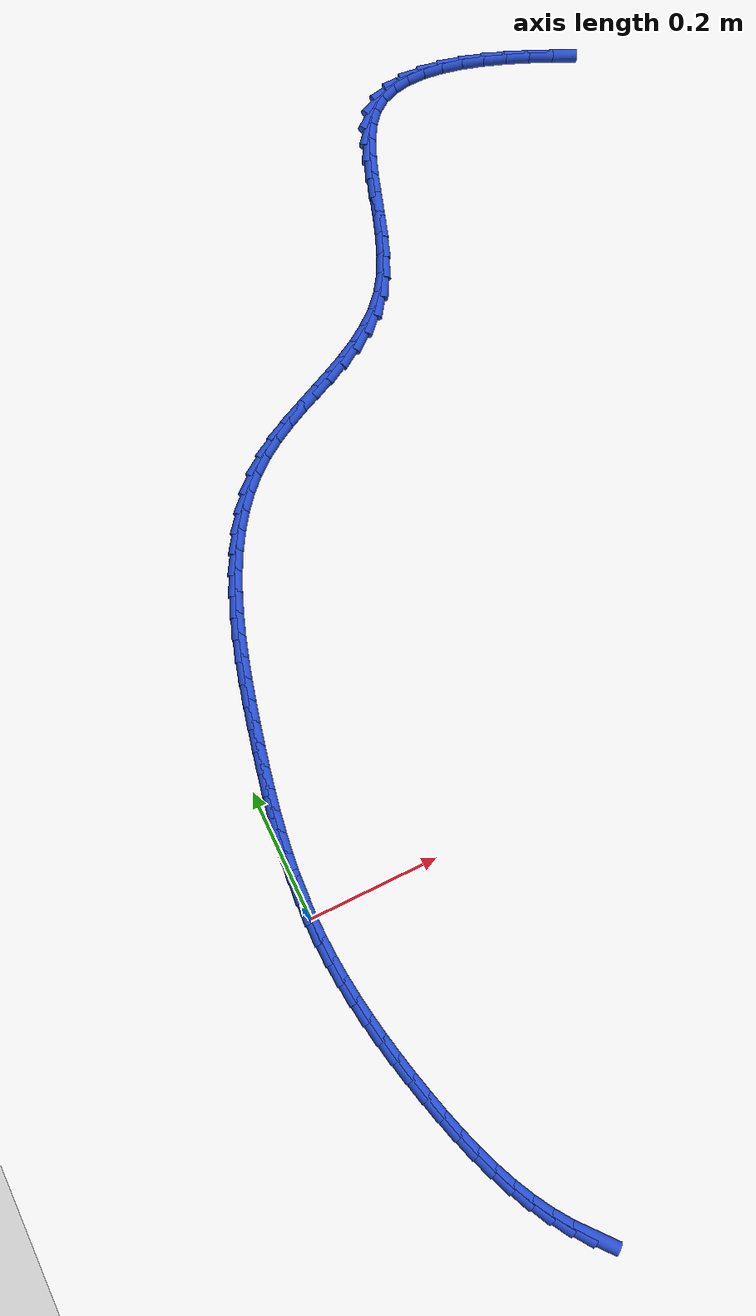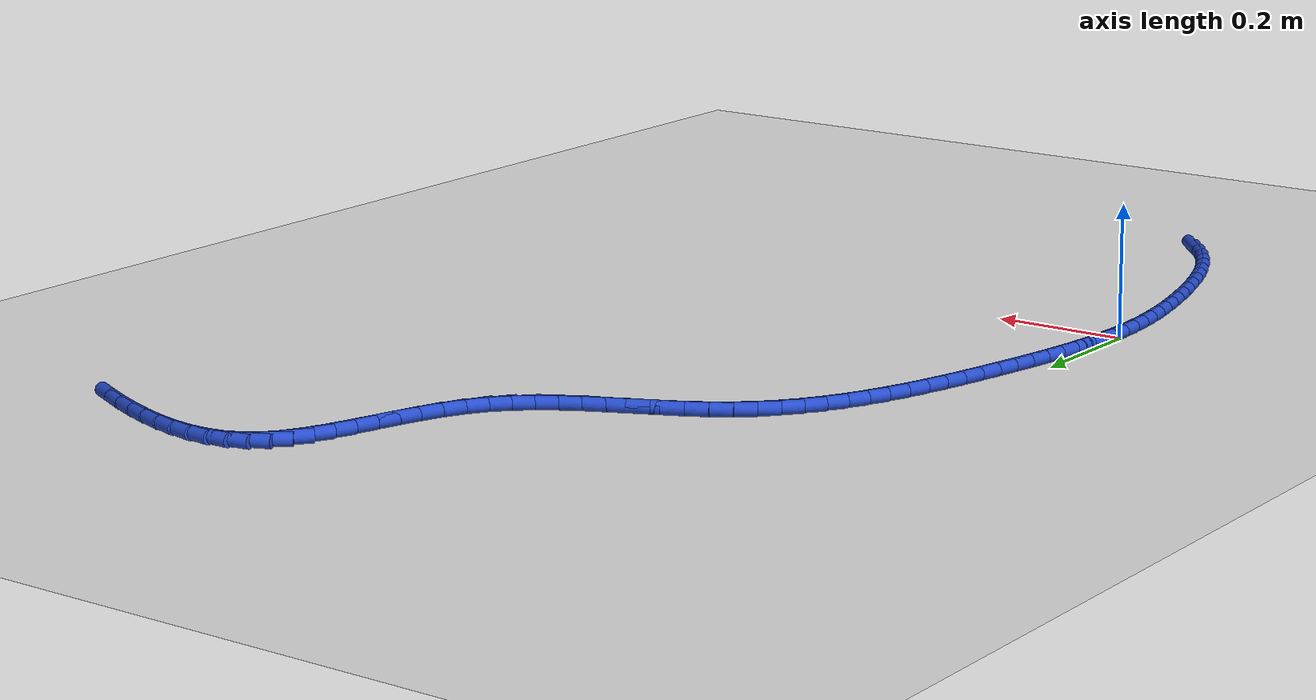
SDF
<sdf version="1.6">
 <world name="default">
  <model name="ground_plane">
   <static>1</static>
   <link name="link">
    <collision name="collision">
     <geometry><plane><normal>0 0 1</normal><size>100 100</size></plane></geometry>
     <surface><friction><ode><mu>100</mu><mu2>50</mu2></ode></friction></surface>
    </collision>
    <visual name="visual">
     <cast_shadows>0</cast_shadows>
     <geometry><plane><normal>0 0 1</normal><size>100 100</size></plane></geometry>
     <material>
      <script><uri>file://media/materials/scripts/gazebo.material</uri><name>Gazebo/WhiteGlow</name></script>
     </material>
    </visual>
   </link>
  </model>
  <model name="line">
   <link name="link_0">
    <pose>-7.806255641895632e-18 -1.3877787807814457e-17 0.01 0 1.57 1.543758668066532</pose>
    <collision name="collision">
     <geometry><cylinder><radius>0.01</radius><length>0.08</length></cylinder></geometry>
    </collision>
    <visual name="visual">
     <material>
      <script><name>Gazebo/Blue</name><uri>file://media/materials/scripts/gazebo.material</uri></script>
     </material>
     <geometry><cylinder><radius>0.01</radius><length>0.08</length></cylinder></geometry>
    </visual>
   </link>
   <link name="link_1">
    <pose>0.0008558965189084472 0.0316480045075554 0.01 0 1.57 1.505740795909924</pose>
    <collision name="collision">
     <geometry><cylinder><radius>0.01</radius><length>0.08</length></cylinder></geometry>
    </collision>
    <visual name="visual">
     <material>
      <script><name>Gazebo/Blue</name><uri>file://media/materials/scripts/gazebo.material</uri></script>
     </material>
     <geometry><cylinder><radius>0.01</radius><length>0.08</length></cylinder></geometry>
    </visual>
   </link>
   <link name="link_2">
    <pose>0.0029159362944309 0.06326918636988166 0.01 0 1.57 1.471400113362632</pose>
    <collision name="collision">
     <geometry><cylinder><radius>0.01</radius><length>0.08</length></cylinder></geometry>
    </collision>
    <visual name="visual">
     <material>
      <script><name>Gazebo/Blue</name><uri>file://media/materials/scripts/gazebo.material</uri></script>
     </material>
     <geometry><cylinder><radius>0.01</radius><length>0.08</length></cylinder></geometry>
    </visual>
   </link>
   <link name="link_3">
    <pose>0.00607141226410911 0.09491101043141258 0.01 0 1.57 1.4409038023674445</pose>
    <collision name="collision">
     <geometry><cylinder><radius>0.01</radius><length>0.08</length></cylinder></geometry>
    </collision>
    <visual name="visual">
     <material>
      <script><name>Gazebo/Blue</name><uri>file://media/materials/scripts/gazebo.material</uri></script>
     </material>
     <geometry><cylinder><radius>0.01</radius><length>0.08</length></cylinder></geometry>
    </visual>
   </link>
   <link name="link_4">
    <pose>0.010213617365484838 0.12662094153658193 0.01 0 1.57 1.414343208902342</pose>
    <collision name="collision">
     <geometry><cylinder><radius>0.01</radius><length>0.08</length></cylinder></geometry>
    </collision>
    <visual name="visual">
     <material>
      <script><name>Gazebo/Blue</name><uri>file://media/materials/scripts/gazebo.material</uri></script>
     </material>
     <geometry><cylinder><radius>0.01</radius><length>0.08</length></cylinder></geometry>
    </visual>
   </link>
   <link name="link_5">
    <pose>0.015233844536099848 0.15844644452982354 0.01 0 1.57 1.3917465496848271</pose>
    <collision name="collision">
     <geometry><cylinder><radius>0.01</radius><length>0.08</length></cylinder></geometry>
    </collision>
    <visual name="visual">
     <material>
      <script><name>Gazebo/Blue</name><uri>file://media/materials/scripts/gazebo.material</uri></script>
     </material>
     <geometry><cylinder><radius>0.01</radius><length>0.08</length></cylinder></geometry>
    </visual>
   </link>
   <link name="link_6">
    <pose>0.02102338671349588 0.19043498425557104 0.01 0 1.57 1.3730919539369864</pose>
    <collision name="collision">
     <geometry><cylinder><radius>0.01</radius><length>0.08</length></cylinder></geometry>
    </collision>
    <visual name="visual">
     <material>
      <script><name>Gazebo/Blue</name><uri>file://media/materials/scripts/gazebo.material</uri></script>
     </material>
     <geometry><cylinder><radius>0.01</radius><length>0.08</length></cylinder></geometry>
    </visual>
   </link>
   <link name="link_7">
    <pose>0.02747353683521471 0.22263402555825837 0.01 0 1.57 1.3583195594884623</pose>
    <collision name="collision">
     <geometry><cylinder><radius>0.01</radius><length>0.08</length></cylinder></geometry>
    </collision>
    <visual name="visual">
     <material>
      <script><name>Gazebo/Blue</name><uri>file://media/materials/scripts/gazebo.material</uri></script>
     </material>
     <geometry><cylinder><radius>0.01</radius><length>0.08</length></cylinder></geometry>
    </visual>
   </link>
   <link name="link_8">
    <pose>0.034475587838798116 0.25509103328231936 0.01 0 1.57 1.3473319732001865</pose>
    <collision name="collision">
     <geometry><cylinder><radius>0.01</radius><length>0.08</length></cylinder></geometry>
    </collision>
    <visual name="visual">
     <material>
      <script><name>Gazebo/Blue</name><uri>file://media/materials/scripts/gazebo.material</uri></script>
     </material>
     <geometry><cylinder><radius>0.01</radius><length>0.08</length></cylinder></geometry>
    </visual>
   </link>
   <link name="link_9">
    <pose>0.04192111137246802 0.2878531935465328 0.01 0 1.57 1.3375063963695724</pose>
    <collision name="collision">
     <geometry><cylinder><radius>0.01</radius><length>0.08</length></cylinder></geometry>
    </collision>
    <visual name="visual">
     <material>
      <script><name>Gazebo/Blue</name><uri>file://media/materials/scripts/gazebo.material</uri></script>
     </material>
     <geometry><cylinder><radius>0.01</radius><length>0.08</length></cylinder></geometry>
    </visual>
   </link>
   <link name="link_10">
    <pose>0.04977276539147243 0.3208966023432861 0.01 0 1.57 1.3229385455392462</pose>
    <collision name="collision">
     <geometry><cylinder><radius>0.01</radius><length>0.08</length></cylinder></geometry>
    </collision>
    <visual name="visual">
     <material>
      <script><name>Gazebo/Blue</name><uri>file://media/materials/scripts/gazebo.material</uri></script>
     </material>
     <geometry><cylinder><radius>0.01</radius><length>0.08</length></cylinder></geometry>
    </visual>
   </link>
   <link name="link_11">
    <pose>0.058158153008186754 0.35403240164557254 0.01 0 1.57 1.3026931092101863</pose>
    <collision name="collision">
     <geometry><cylinder><radius>0.01</radius><length>0.08</length></cylinder></geometry>
    </collision>
    <visual name="visual">
     <material>
      <script><name>Gazebo/Blue</name><uri>file://media/materials/scripts/gazebo.material</uri></script>
     </material>
     <geometry><cylinder><radius>0.01</radius><length>0.08</length></cylinder></geometry>
    </visual>
   </link>
   <link name="link_12">
    <pose>0.06722821271247166 0.3870483967951238 0.01 0 1.57 1.276521718573467</pose>
    <collision name="collision">
     <geometry><cylinder><radius>0.01</radius><length>0.08</length></cylinder></geometry>
    </collision>
    <visual name="visual">
     <material>
      <script><name>Gazebo/Blue</name><uri>file://media/materials/scripts/gazebo.material</uri></script>
     </material>
     <geometry><cylinder><radius>0.01</radius><length>0.08</length></cylinder></geometry>
    </visual>
   </link>
   <link name="link_13">
    <pose>0.07713388299418776 0.41973239313367117 0.01 0 1.57 1.2440430461393286</pose>
    <collision name="collision">
     <geometry><cylinder><radius>0.01</radius><length>0.08</length></cylinder></geometry>
    </collision>
    <visual name="visual">
     <material>
      <script><name>Gazebo/Blue</name><uri>file://media/materials/scripts/gazebo.material</uri></script>
     </material>
     <geometry><cylinder><radius>0.01</radius><length>0.08</length></cylinder></geometry>
    </visual>
   </link>
   <link name="link_14">
    <pose>0.08802610234319569 0.4518721960029466 0.01 0 1.57 1.2047565377561085</pose>
    <collision name="collision">
     <geometry><cylinder><radius>0.01</radius><length>0.08</length></cylinder></geometry>
    </collision>
    <visual name="visual">
     <material>
      <script><name>Gazebo/Blue</name><uri>file://media/materials/scripts/gazebo.material</uri></script>
     </material>
     <geometry><cylinder><radius>0.01</radius><length>0.08</length></cylinder></geometry>
    </visual>
   </link>
   <link name="link_15">
    <pose>0.1000558092493561 0.4832556107446815 0.01 0 1.57 1.1580645969727832</pose>
    <collision name="collision">
     <geometry><cylinder><radius>0.01</radius><length>0.08</length></cylinder></geometry>
    </collision>
    <visual name="visual">
     <material>
      <script><name>Gazebo/Blue</name><uri>file://media/materials/scripts/gazebo.material</uri></script>
     </material>
     <geometry><cylinder><radius>0.01</radius><length>0.08</length></cylinder></geometry>
    </visual>
   </link>
   <link name="link_16">
    <pose>0.11337394220252965 0.5136704427006076 0.01 0 1.57 1.1033120941979375</pose>
    <collision name="collision">
     <geometry><cylinder><radius>0.01</radius><length>0.08</length></cylinder></geometry>
    </collision>
    <visual name="visual">
     <material>
      <script><name>Gazebo/Blue</name><uri>file://media/materials/scripts/gazebo.material</uri></script>
     </material>
     <geometry><cylinder><radius>0.01</radius><length>0.08</length></cylinder></geometry>
    </visual>
   </link>
   <link name="link_17">
    <pose>0.12813143969257695 0.5429044972124563 0.01 0 1.57 1.039854661652886</pose>
    <collision name="collision">
     <geometry><cylinder><radius>0.01</radius><length>0.08</length></cylinder></geometry>
    </collision>
    <visual name="visual">
     <material>
      <script><name>Gazebo/Blue</name><uri>file://media/materials/scripts/gazebo.material</uri></script>
     </material>
     <geometry><cylinder><radius>0.01</radius><length>0.08</length></cylinder></geometry>
    </visual>
   </link>
   <link name="link_18">
    <pose>0.1444792402093586 0.5707455796219593 0.01 0 1.57 0.9671682220580119</pose>
    <collision name="collision">
     <geometry><cylinder><radius>0.01</radius><length>0.08</length></cylinder></geometry>
    </collision>
    <visual name="visual">
     <material>
      <script><name>Gazebo/Blue</name><uri>file://media/materials/scripts/gazebo.material</uri></script>
     </material>
     <geometry><cylinder><radius>0.01</radius><length>0.08</length></cylinder></geometry>
    </visual>
   </link>
   <link name="link_19">
    <pose>0.16256828224273534 0.5969814952708483 0.01 0 1.57 0.8850078232531806</pose>
    <collision name="collision">
     <geometry><cylinder><radius>0.01</radius><length>0.08</length></cylinder></geometry>
    </collision>
    <visual name="visual">
     <material>
      <script><name>Gazebo/Blue</name><uri>file://media/materials/scripts/gazebo.material</uri></script>
     </material>
     <geometry><cylinder><radius>0.01</radius><length>0.08</length></cylinder></geometry>
    </visual>
   </link>
   <link name="link_20">
    <pose>0.18254950428256778 0.6214000495008549 0.01 0 1.57 0.7936085216722211</pose>
    <collision name="collision">
     <geometry><cylinder><radius>0.01</radius><length>0.08</length></cylinder></geometry>
    </collision>
    <visual name="visual">
     <material>
      <script><name>Gazebo/Blue</name><uri>file://media/materials/scripts/gazebo.material</uri></script>
     </material>
     <geometry><cylinder><radius>0.01</radius><length>0.08</length></cylinder></geometry>
    </visual>
   </link>
   <link name="link_21">
    <pose>0.20457384481871638 0.6437890476537105 0.01 0 1.57 0.6938908633965613</pose>
    <collision name="collision">
     <geometry><cylinder><radius>0.01</radius><length>0.08</length></cylinder></geometry>
    </collision>
    <visual name="visual">
     <material>
      <script><name>Gazebo/Blue</name><uri>file://media/materials/scripts/gazebo.material</uri></script>
     </material>
     <geometry><cylinder><radius>0.01</radius><length>0.08</length></cylinder></geometry>
    </visual>
   </link>
   <link name="link_22">
    <pose>0.22879224234104195 0.6639362950711466 0.01 0 1.57 0.5924047732687826</pose>
    <collision name="collision">
     <geometry><cylinder><radius>0.01</radius><length>0.08</length></cylinder></geometry>
    </collision>
    <visual name="visual">
     <material>
      <script><name>Gazebo/Blue</name><uri>file://media/materials/scripts/gazebo.material</uri></script>
     </material>
     <geometry><cylinder><radius>0.01</radius><length>0.08</length></cylinder></geometry>
    </visual>
   </link>
   <link name="link_23">
    <pose>0.2552536741422328 0.6817460059893444 0.01 0 1.57 0.5133283043003264</pose>
    <collision name="collision">
     <geometry><cylinder><radius>0.01</radius><length>0.08</length></cylinder></geometry>
    </collision>
    <visual name="visual">
     <material>
      <script><name>Gazebo/Blue</name><uri>file://media/materials/scripts/gazebo.material</uri></script>
     </material>
     <geometry><cylinder><radius>0.01</radius><length>0.08</length></cylinder></geometry>
    </visual>
   </link>
   <link name="link_24">
    <pose>0.283518691610286 0.697680029520909 0.01 0 1.57 0.46216572186184385</pose>
    <collision name="collision">
     <geometry><cylinder><radius>0.01</radius><length>0.08</length></cylinder></geometry>
    </collision>
    <visual name="visual">
     <material>
      <script><name>Gazebo/Blue</name><uri>file://media/materials/scripts/gazebo.material</uri></script>
     </material>
     <geometry><cylinder><radius>0.01</radius><length>0.08</length></cylinder></geometry>
    </visual>
   </link>
   <link name="link_25">
    <pose>0.3130017661820029 0.7123669939659347 0.01 0 1.57 0.4370259539608368</pose>
    <collision name="collision">
     <geometry><cylinder><radius>0.01</radius><length>0.08</length></cylinder></geometry>
    </collision>
    <visual name="visual">
     <material>
      <script><name>Gazebo/Blue</name><uri>file://media/materials/scripts/gazebo.material</uri></script>
     </material>
     <geometry><cylinder><radius>0.01</radius><length>0.08</length></cylinder></geometry>
    </visual>
   </link>
   <link name="link_26">
    <pose>0.343117342812616 0.7264355578584716 0.01 0 1.57 0.4367082186893146</pose>
    <collision name="collision">
     <geometry><cylinder><radius>0.01</radius><length>0.08</length></cylinder></geometry>
    </collision>
    <visual name="visual">
     <material>
      <script><name>Gazebo/Blue</name><uri>file://media/materials/scripts/gazebo.material</uri></script>
     </material>
     <geometry><cylinder><radius>0.01</radius><length>0.08</length></cylinder></geometry>
    </visual>
   </link>
   <link name="link_27">
    <pose>0.37327986645735733 0.7405143797325687 0.01 0 1.57 0.46109995841185386</pose>
    <collision name="collision">
     <geometry><cylinder><radius>0.01</radius><length>0.08</length></cylinder></geometry>
    </collision>
    <visual name="visual">
     <material>
      <script><name>Gazebo/Blue</name><uri>file://media/materials/scripts/gazebo.material</uri></script>
     </material>
     <geometry><cylinder><radius>0.01</radius><length>0.08</length></cylinder></geometry>
    </visual>
   </link>
   <link name="link_28">
    <pose>0.4029037820714588 0.7552321181222753 0.01 0 1.57 0.5111679207233936</pose>
    <collision name="collision">
     <geometry><cylinder><radius>0.01</radius><length>0.08</length></cylinder></geometry>
    </collision>
    <visual name="visual">
     <material>
      <script><name>Gazebo/Blue</name><uri>file://media/materials/scripts/gazebo.material</uri></script>
     </material>
     <geometry><cylinder><radius>0.01</radius><length>0.08</length></cylinder></geometry>
    </visual>
   </link>
   <link name="link_29">
    <pose>0.431403534610153 0.7712174315616412 0.01 0 1.57 0.5885586222143333</pose>
    <collision name="collision">
     <geometry><cylinder><radius>0.01</radius><length>0.08</length></cylinder></geometry>
    </collision>
    <visual name="visual">
     <material>
      <script><name>Gazebo/Blue</name><uri>file://media/materials/scripts/gazebo.material</uri></script>
     </material>
     <geometry><cylinder><radius>0.01</radius><length>0.08</length></cylinder></geometry>
    </visual>
   </link>
   <link name="link_30">
    <pose>0.4581935690286717 0.7890989785847154 0.01 0 1.57 0.6945970259362806</pose>
    <collision name="collision">
     <geometry><cylinder><radius>0.01</radius><length>0.08</length></cylinder></geometry>
    </collision>
    <visual name="visual">
     <material>
      <script><name>Gazebo/Blue</name><uri>file://media/materials/scripts/gazebo.material</uri></script>
     </material>
     <geometry><cylinder><radius>0.01</radius><length>0.08</length></cylinder></geometry>
    </visual>
   </link>
   <link name="link_31">
    <pose>0.48268833028224717 0.8095054177255475 0.01 0 1.57 0.8284507504421147</pose>
    <collision name="collision">
     <geometry><cylinder><radius>0.01</radius><length>0.08</length></cylinder></geometry>
    </collision>
    <visual name="visual">
     <material>
      <script><name>Gazebo/Blue</name><uri>file://media/materials/scripts/gazebo.material</uri></script>
     </material>
     <geometry><cylinder><radius>0.01</radius><length>0.08</length></cylinder></geometry>
    </visual>
   </link>
   <link name="link_32">
    <pose>0.5043022633261116 0.8330654075181869 0.01 0 1.57 0.9795465984308942</pose>
    <collision name="collision">
     <geometry><cylinder><radius>0.01</radius><length>0.08</length></cylinder></geometry>
    </collision>
    <visual name="visual">
     <material>
      <script><name>Gazebo/Blue</name><uri>file://media/materials/scripts/gazebo.material</uri></script>
     </material>
     <geometry><cylinder><radius>0.01</radius><length>0.08</length></cylinder></geometry>
    </visual>
   </link>
   <link name="link_33">
    <pose>0.5225648713107278 0.8602675248480662 0.01 0 1.57 1.1044709969895836</pose>
    <collision name="collision">
     <geometry><cylinder><radius>0.01</radius><length>0.08</length></cylinder></geometry>
    </collision>
    <visual name="visual">
     <material>
      <script><name>Gazebo/Blue</name><uri>file://media/materials/scripts/gazebo.material</uri></script>
     </material>
     <geometry><cylinder><radius>0.01</radius><length>0.08</length></cylinder></geometry>
    </visual>
   </link>
   <link name="link_34">
    <pose>0.5378306959653324 0.8905958743502436 0.01 0 1.57 1.190725432326556</pose>
    <collision name="collision">
     <geometry><cylinder><radius>0.01</radius><length>0.08</length></cylinder></geometry>
    </collision>
    <visual name="visual">
     <material>
      <script><name>Gazebo/Blue</name><uri>file://media/materials/scripts/gazebo.material</uri></script>
     </material>
     <geometry><cylinder><radius>0.01</radius><length>0.08</length></cylinder></geometry>
    </visual>
   </link>
   <link name="link_35">
    <pose>0.5508143856995672 0.9230961361097657 0.01 0 1.57 1.2442744921775082</pose>
    <collision name="collision">
     <geometry><cylinder><radius>0.01</radius><length>0.08</length></cylinder></geometry>
    </collision>
    <visual name="visual">
     <material>
      <script><name>Gazebo/Blue</name><uri>file://media/materials/scripts/gazebo.material</uri></script>
     </material>
     <geometry><cylinder><radius>0.01</radius><length>0.08</length></cylinder></geometry>
    </visual>
   </link>
   <link name="link_36">
    <pose>0.5622320901503481 0.9568121624897081 0.01 0 1.57 1.2692398446456856</pose>
    <collision name="collision">
     <geometry><cylinder><radius>0.01</radius><length>0.08</length></cylinder></geometry>
    </collision>
    <visual name="visual">
     <material>
      <script><name>Gazebo/Blue</name><uri>file://media/materials/scripts/gazebo.material</uri></script>
     </material>
     <geometry><cylinder><radius>0.01</radius><length>0.08</length></cylinder></geometry>
    </visual>
   </link>
   <link name="link_37">
    <pose>0.572799958954591 0.9907878058531462 0.01 0 1.57 1.266968375332468</pose>
    <collision name="collision">
     <geometry><cylinder><radius>0.01</radius><length>0.08</length></cylinder></geometry>
    </collision>
    <visual name="visual">
     <material>
      <script><name>Gazebo/Blue</name><uri>file://media/materials/scripts/gazebo.material</uri></script>
     </material>
     <geometry><cylinder><radius>0.01</radius><length>0.08</length></cylinder></geometry>
    </visual>
   </link>
   <link name="link_38">
    <pose>0.5832341417492113 1.0240669185631541 0.01 0 1.57 1.2356040957616927</pose>
    <collision name="collision">
     <geometry><cylinder><radius>0.01</radius><length>0.08</length></cylinder></geometry>
    </collision>
    <visual name="visual">
     <material>
      <script><name>Gazebo/Blue</name><uri>file://media/materials/scripts/gazebo.material</uri></script>
     </material>
     <geometry><cylinder><radius>0.01</radius><length>0.08</length></cylinder></geometry>
    </visual>
   </link>
   <link name="link_39">
    <pose>0.5942507881711245 1.055693352982808 0.01 0 1.57 1.1694285441774839</pose>
    <collision name="collision">
     <geometry><cylinder><radius>0.01</radius><length>0.08</length></cylinder></geometry>
    </collision>
    <visual name="visual">
     <material>
      <script><name>Gazebo/Blue</name><uri>file://media/materials/scripts/gazebo.material</uri></script>
     </material>
     <geometry><cylinder><radius>0.01</radius><length>0.08</length></cylinder></geometry>
    </visual>
   </link>
   <link name="link_40">
    <pose>0.6065660478572467 1.0847109614751818 0.01 0 1.57 1.0580214836642494</pose>
    <collision name="collision">
     <geometry><cylinder><radius>0.01</radius><length>0.08</length></cylinder></geometry>
    </collision>
    <visual name="visual">
     <material>
      <script><name>Gazebo/Blue</name><uri>file://media/materials/scripts/gazebo.material</uri></script>
     </material>
     <geometry><cylinder><radius>0.01</radius><length>0.08</length></cylinder></geometry>
    </visual>
   </link>
   <link name="link_41">
    <pose>0.6208960704444932 1.1101635964033512 0.01 0 1.57 0.8869254545343136</pose>
    <collision name="collision">
     <geometry><cylinder><radius>0.01</radius><length>0.08</length></cylinder></geometry>
    </collision>
    <visual name="visual">
     <material>
      <script><name>Gazebo/Blue</name><uri>file://media/materials/scripts/gazebo.material</uri></script>
     </material>
     <geometry><cylinder><radius>0.01</radius><length>0.08</length></cylinder></geometry>
    </visual>
   </link>
   <link name="link_42">
    <pose>0.6379570055697799 1.131095110130391 0.01 0 1.57 0.6479128703624005</pose>
    <collision name="collision">
     <geometry><cylinder><radius>0.01</radius><length>0.08</length></cylinder></geometry>
    </collision>
    <visual name="visual">
     <material>
      <script><name>Gazebo/Blue</name><uri>file://media/materials/scripts/gazebo.material</uri></script>
     </material>
     <geometry><cylinder><radius>0.01</radius><length>0.08</length></cylinder></geometry>
    </visual>
   </link>
   <link name="link_43">
    <pose>0.6584311290847005 1.146592308093387 0.01 0 1.57 0.3923210060359048</pose>
    <collision name="collision">
     <geometry><cylinder><radius>0.01</radius><length>0.08</length></cylinder></geometry>
    </collision>
    <visual name="visual">
     <material>
      <script><name>Gazebo/Blue</name><uri>file://media/materials/scripts/gazebo.material</uri></script>
     </material>
     <geometry><cylinder><radius>0.01</radius><length>0.08</length></cylinder></geometry>
    </visual>
   </link>
   <link name="link_44">
    <pose>0.682396313557764 1.1565083989732312 0.01 0 1.57 0.17759906851085347</pose>
    <collision name="collision">
     <geometry><cylinder><radius>0.01</radius><length>0.08</length></cylinder></geometry>
    </collision>
    <visual name="visual">
     <material>
      <script><name>Gazebo/Blue</name><uri>file://media/materials/scripts/gazebo.material</uri></script>
     </material>
     <geometry><cylinder><radius>0.01</radius><length>0.08</length></cylinder></geometry>
    </visual>
   </link>
   <link name="link_45">
    <pose>0.7094096031333837 1.1613570190243616 0.01 0 1.57 0.010688148107674551</pose>
    <collision name="collision">
     <geometry><cylinder><radius>0.01</radius><length>0.08</length></cylinder></geometry>
    </collision>
    <visual name="visual">
     <material>
      <script><name>Gazebo/Blue</name><uri>file://media/materials/scripts/gazebo.material</uri></script>
     </material>
     <geometry><cylinder><radius>0.01</radius><length>0.08</length></cylinder></geometry>
    </visual>
   </link>
   <link name="link_46">
    <pose>0.7390109992770937 1.1616734151786288 0.01 0 1.57 -0.11548256608917344</pose>
    <collision name="collision">
     <geometry><cylinder><radius>0.01</radius><length>0.08</length></cylinder></geometry>
    </collision>
    <visual name="visual">
     <material>
      <script><name>Gazebo/Blue</name><uri>file://media/materials/scripts/gazebo.material</uri></script>
     </material>
     <geometry><cylinder><radius>0.01</radius><length>0.08</length></cylinder></geometry>
    </visual>
   </link>
   <link name="link_47">
    <pose>0.7707405034544269 1.1579928343678823 0.01 0 1.57 -0.2106833294217414</pose>
    <collision name="collision">
     <geometry><cylinder><radius>0.01</radius><length>0.08</length></cylinder></geometry>
    </collision>
    <visual name="visual">
     <material>
      <script><name>Gazebo/Blue</name><uri>file://media/materials/scripts/gazebo.material</uri></script>
     </material>
     <geometry><cylinder><radius>0.01</radius><length>0.08</length></cylinder></geometry>
    </visual>
   </link>
   <link name="link_48">
    <pose>0.8041381171309175 1.150850523523973 0.01 0 1.57 -0.2831403851998883</pose>
    <collision name="collision">
     <geometry><cylinder><radius>0.01</radius><length>0.08</length></cylinder></geometry>
    </collision>
    <visual name="visual">
     <material>
      <script><name>Gazebo/Blue</name><uri>file://media/materials/scripts/gazebo.material</uri></script>
     </material>
     <geometry><cylinder><radius>0.01</radius><length>0.08</length></cylinder></geometry>
    </visual>
   </link>
   <link name="link_49">
    <pose>0.8387438417720987 1.1407817295787506 0.01 0 1.57 -0.33884496505204237</pose>
    <collision name="collision">
     <geometry><cylinder><radius>0.01</radius><length>0.08</length></cylinder></geometry>
    </collision>
    <visual name="visual">
     <material>
      <script><name>Gazebo/Blue</name><uri>file://media/materials/scripts/gazebo.material</uri></script>
     </material>
     <geometry><cylinder><radius>0.01</radius><length>0.08</length></cylinder></geometry>
    </visual>
   </link>
   <link name="link_50">
    <pose>0.874097678843504 1.1283216994640655 0.01 0 1.57 -0.38193836346112814</pose>
    <collision name="collision">
     <geometry><cylinder><radius>0.01</radius><length>0.08</length></cylinder></geometry>
    </collision>
    <visual name="visual">
     <material>
      <script><name>Gazebo/Blue</name><uri>file://media/materials/scripts/gazebo.material</uri></script>
     </material>
     <geometry><cylinder><radius>0.01</radius><length>0.08</length></cylinder></geometry>
    </visual>
   </link>
   <link name="link_51">
    <pose>0.9097396298106672 1.114005680111768 0.01 0 1.57 -0.41521365847846736</pose>
    <collision name="collision">
     <geometry><cylinder><radius>0.01</radius><length>0.08</length></cylinder></geometry>
    </collision>
    <visual name="visual">
     <material>
      <script><name>Gazebo/Blue</name><uri>file://media/materials/scripts/gazebo.material</uri></script>
     </material>
     <geometry><cylinder><radius>0.01</radius><length>0.08</length></cylinder></geometry>
    </visual>
   </link>
   <link name="link_52">
    <pose>0.9452096961391216 1.0983689184537078 0.01 0 1.57 -0.44049610199473566</pose>
    <collision name="collision">
     <geometry><cylinder><radius>0.01</radius><length>0.08</length></cylinder></geometry>
    </collision>
    <visual name="visual">
     <material>
      <script><name>Gazebo/Blue</name><uri>file://media/materials/scripts/gazebo.material</uri></script>
     </material>
     <geometry><cylinder><radius>0.01</radius><length>0.08</length></cylinder></geometry>
    </visual>
   </link>
   <link name="link_202">
    <pose>0.16651803352055977 -0.5492456580085004 0.01 0 1.57 -0.8649407754309075</pose>
    <collision name="collision">
     <geometry><cylinder><radius>0.01</radius><length>0.08</length></cylinder></geometry>
    </collision>
    <visual name="visual">
     <material>
      <script><name>Gazebo/Blue</name><uri>file://media/materials/scripts/gazebo.material</uri></script>
     </material>
     <geometry><cylinder><radius>0.01</radius><length>0.08</length></cylinder></geometry>
    </visual>
   </link>
   <link name="link_203">
    <pose>0.1462776975232183 -0.5254990910619975 0.01 0 1.57 -0.9515903060078857</pose>
    <collision name="collision">
     <geometry><cylinder><radius>0.01</radius><length>0.08</length></cylinder></geometry>
    </collision>
    <visual name="visual">
     <material>
      <script><name>Gazebo/Blue</name><uri>file://media/materials/scripts/gazebo.material</uri></script>
     </material>
     <geometry><cylinder><radius>0.01</radius><length>0.08</length></cylinder></geometry>
    </visual>
   </link>
   <link name="link_204">
    <pose>0.1280184342187337 -0.4998796433065651 0.01 0 1.57 -1.0282060355677887</pose>
    <collision name="collision">
     <geometry><cylinder><radius>0.01</radius><length>0.08</length></cylinder></geometry>
    </collision>
    <visual name="visual">
     <material>
      <script><name>Gazebo/Blue</name><uri>file://media/materials/scripts/gazebo.material</uri></script>
     </material>
     <geometry><cylinder><radius>0.01</radius><length>0.08</length></cylinder></geometry>
    </visual>
   </link>
   <link name="link_205">
    <pose>0.11158089352505243 -0.4726180568350483 0.01 0 1.57 -1.0948247531385715</pose>
    <collision name="collision">
     <geometry><cylinder><radius>0.01</radius><length>0.08</length></cylinder></geometry>
    </collision>
    <visual name="visual">
     <material>
      <script><name>Gazebo/Blue</name><uri>file://media/materials/scripts/gazebo.material</uri></script>
     </material>
     <geometry><cylinder><radius>0.01</radius><length>0.08</length></cylinder></geometry>
    </visual>
   </link>
   <link name="link_206">
    <pose>0.096802153330011 -0.44394937769128956 0.01 0 1.57 -1.152003597099441</pose>
    <collision name="collision">
     <geometry><cylinder><radius>0.01</radius><length>0.08</length></cylinder></geometry>
    </collision>
    <visual name="visual">
     <material>
      <script><name>Gazebo/Blue</name><uri>file://media/materials/scripts/gazebo.material</uri></script>
     </material>
     <geometry><cylinder><radius>0.01</radius><length>0.08</length></cylinder></geometry>
    </visual>
   </link>
   <link name="link_207">
    <pose>0.08351929152144576 -0.4141086519191302 0.01 0 1.57 -1.2004473193389267</pose>
    <collision name="collision">
     <geometry><cylinder><radius>0.01</radius><length>0.08</length></cylinder></geometry>
    </collision>
    <visual name="visual">
     <material>
      <script><name>Gazebo/Blue</name><uri>file://media/materials/scripts/gazebo.material</uri></script>
     </material>
     <geometry><cylinder><radius>0.01</radius><length>0.08</length></cylinder></geometry>
    </visual>
   </link>
   <link name="link_208">
    <pose>0.07156938598719391 -0.38333092556241455 0.01 0 1.57 -1.2408731536160655</pose>
    <collision name="collision">
     <geometry><cylinder><radius>0.01</radius><length>0.08</length></cylinder></geometry>
    </collision>
    <visual name="visual">
     <material>
      <script><name>Gazebo/Blue</name><uri>file://media/materials/scripts/gazebo.material</uri></script>
     </material>
     <geometry><cylinder><radius>0.01</radius><length>0.08</length></cylinder></geometry>
    </visual>
   </link>
   <link name="link_209">
    <pose>0.0607895146150917 -0.3518512446649839 0.01 0 1.57 -1.2739269971296385</pose>
    <collision name="collision">
     <geometry><cylinder><radius>0.01</radius><length>0.08</length></cylinder></geometry>
    </collision>
    <visual name="visual">
     <material>
      <script><name>Gazebo/Blue</name><uri>file://media/materials/scripts/gazebo.material</uri></script>
     </material>
     <geometry><cylinder><radius>0.01</radius><length>0.08</length></cylinder></geometry>
    </visual>
   </link>
   <link name="link_210">
    <pose>0.05101675529297576 -0.3199046552706808 0.01 0 1.57 -1.3001348157103343</pose>
    <collision name="collision">
     <geometry><cylinder><radius>0.01</radius><length>0.08</length></cylinder></geometry>
    </collision>
    <visual name="visual">
     <material>
      <script><name>Gazebo/Blue</name><uri>file://media/materials/scripts/gazebo.material</uri></script>
     </material>
     <geometry><cylinder><radius>0.01</radius><length>0.08</length></cylinder></geometry>
    </visual>
   </link>
   <link name="link_211">
    <pose>0.042088185908682664 -0.28772620342334776 0.01 0 1.57 -1.3206536775301176</pose>
    <collision name="collision">
     <geometry><cylinder><radius>0.01</radius><length>0.08</length></cylinder></geometry>
    </collision>
    <visual name="visual">
     <material>
      <script><name>Gazebo/Blue</name><uri>file://media/materials/scripts/gazebo.material</uri></script>
     </material>
     <geometry><cylinder><radius>0.01</radius><length>0.08</length></cylinder></geometry>
    </visual>
   </link>
   <link name="link_212">
    <pose>0.03386227601364298 -0.2555300897557072 0.01 0 1.57 -1.3411919222626092</pose>
    <collision name="collision">
     <geometry><cylinder><radius>0.01</radius><length>0.08</length></cylinder></geometry>
    </collision>
    <visual name="visual">
     <material>
      <script><name>Gazebo/Blue</name><uri>file://media/materials/scripts/gazebo.material</uri></script>
     </material>
     <geometry><cylinder><radius>0.01</radius><length>0.08</length></cylinder></geometry>
    </visual>
   </link>
   <link name="link_213">
    <pose>0.026348701254624823 -0.2233831699683269 0.01 0 1.57 -1.364204623049857</pose>
    <collision name="collision">
     <geometry><cylinder><radius>0.01</radius><length>0.08</length></cylinder></geometry>
    </collision>
    <visual name="visual">
     <material>
      <script><name>Gazebo/Blue</name><uri>file://media/materials/scripts/gazebo.material</uri></script>
     </material>
     <geometry><cylinder><radius>0.01</radius><length>0.08</length></cylinder></geometry>
    </visual>
   </link>
   <link name="link_214">
    <pose>0.019622302470902894 -0.19128879861224835 0.01 0 1.57 -1.3897676204863876</pose>
    <collision name="collision">
     <geometry><cylinder><radius>0.01</radius><length>0.08</length></cylinder></geometry>
    </collision>
    <visual name="visual">
     <material>
      <script><name>Gazebo/Blue</name><uri>file://media/materials/scripts/gazebo.material</uri></script>
     </material>
     <geometry><cylinder><radius>0.01</radius><length>0.08</length></cylinder></geometry>
    </visual>
   </link>
   <link name="link_215">
    <pose>0.013758175997302325 -0.15925008126723722 0.01 0 1.57 -1.4179403778259245</pose>
    <collision name="collision">
     <geometry><cylinder><radius>0.01</radius><length>0.08</length></cylinder></geometry>
    </collision>
    <visual name="visual">
     <material>
      <script><name>Gazebo/Blue</name><uri>file://media/materials/scripts/gazebo.material</uri></script>
     </material>
     <geometry><cylinder><radius>0.01</radius><length>0.08</length></cylinder></geometry>
    </visual>
   </link>
   <link name="link_216">
    <pose>0.00883141816864816 -0.1272701235130588 0.01 0 1.57 -1.4487700792658822</pose>
    <collision name="collision">
     <geometry><cylinder><radius>0.01</radius><length>0.08</length></cylinder></geometry>
    </collision>
    <visual name="visual">
     <material>
      <script><name>Gazebo/Blue</name><uri>file://media/materials/scripts/gazebo.material</uri></script>
     </material>
     <geometry><cylinder><radius>0.01</radius><length>0.08</length></cylinder></geometry>
    </visual>
   </link>
   <link name="link_217">
    <pose>0.00491712531976578 -0.09535203092948054 0.01 0 1.57 -1.482285505261394</pose>
    <collision name="collision">
     <geometry><cylinder><radius>0.01</radius><length>0.08</length></cylinder></geometry>
    </collision>
    <visual name="visual">
     <material>
      <script><name>Gazebo/Blue</name><uri>file://media/materials/scripts/gazebo.material</uri></script>
     </material>
     <geometry><cylinder><radius>0.01</radius><length>0.08</length></cylinder></geometry>
    </visual>
   </link>
   <link name="link_218">
    <pose>0.0020903937854801925 -0.06349890909626747 0.01 0 1.57 -1.5184900935194858</pose>
    <collision name="collision">
     <geometry><cylinder><radius>0.01</radius><length>0.08</length></cylinder></geometry>
    </collision>
    <visual name="visual">
     <material>
      <script><name>Gazebo/Blue</name><uri>file://media/materials/scripts/gazebo.material</uri></script>
     </material>
     <geometry><cylinder><radius>0.01</radius><length>0.08</length></cylinder></geometry>
    </visual>
   </link>
   <link name="link_219">
    <pose>0.00042631990061654194 -0.03171386359318556 0.01 0 1.57 -1.557354438120344</pose>
    <collision name="collision">
     <geometry><cylinder><radius>0.01</radius><length>0.08</length></cylinder></geometry>
    </collision>
    <visual name="visual">
     <material>
      <script><name>Gazebo/Blue</name><uri>file://media/materials/scripts/gazebo.material</uri></script>
     </material>
     <geometry><cylinder><radius>0.01</radius><length>0.08</length></cylinder></geometry>
    </visual>
   </link>
   <link name="link_220">
    <pose>-2.3418766925686896e-17 1.1796119636642288e-16 0.01 0 1.57 1.542783988094713</pose>
    <collision name="collision">
     <geometry><cylinder><radius>0.01</radius><length>0.08</length></cylinder></geometry>
    </collision>
    <visual name="visual">
     <material>
      <script><name>Gazebo/Blue</name><uri>file://media/materials/scripts/gazebo.material</uri></script>
     </material>
     <geometry><cylinder><radius>0.01</radius><length>0.08</length></cylinder></geometry>
    </visual>
   </link>
   <link name="link_221">
    <pose>0.0008865304184556191 0.031639576103521305 0.01 0 1.57 1.49885732069634</pose>
    <collision name="collision">
     <geometry><cylinder><radius>0.01</radius><length>0.08</length></cylinder></geometry>
    </collision>
    <visual name="visual">
     <material>
      <script><name>Gazebo/Blue</name><uri>file://media/materials/scripts/gazebo.material</uri></script>
     </material>
     <geometry><cylinder><radius>0.01</radius><length>0.08</length></cylinder></geometry>
    </visual>
   </link>
   <link name="link_222">
    <pose>0.0031610074908087014 0.06320175913761517 0.01 0 1.57 1.5208234181832376</pose>
    <collision name="collision">
     <geometry><cylinder><radius>0.01</radius><length>0.08</length></cylinder></geometry>
    </collision>
    <visual name="visual">
     <material>
      <script><name>Gazebo/Blue</name><uri>file://media/materials/scripts/gazebo.material</uri></script>
     </material>
     <geometry><cylinder><radius>0.01</radius><length>0.08</length></cylinder></geometry>
    </visual>
   </link>
  </model>
 </world>
</sdf>
